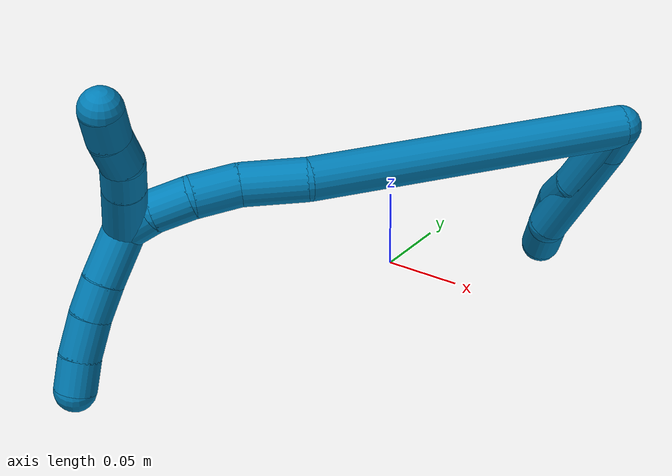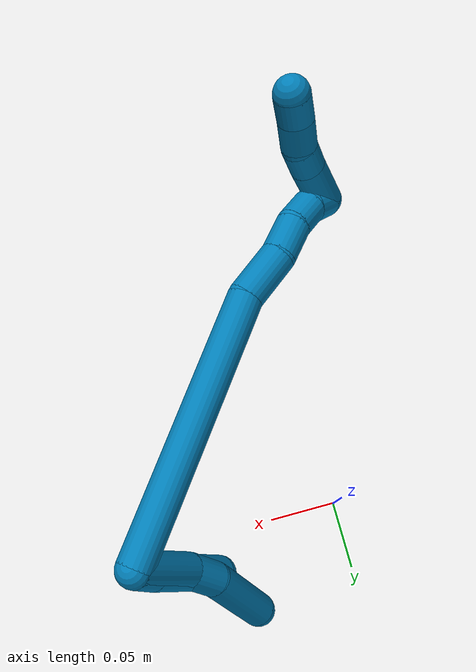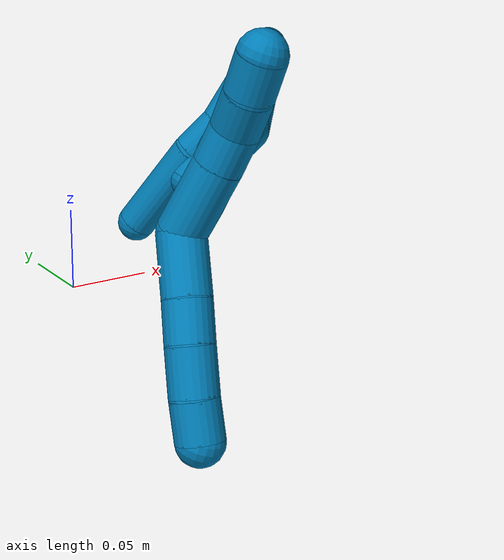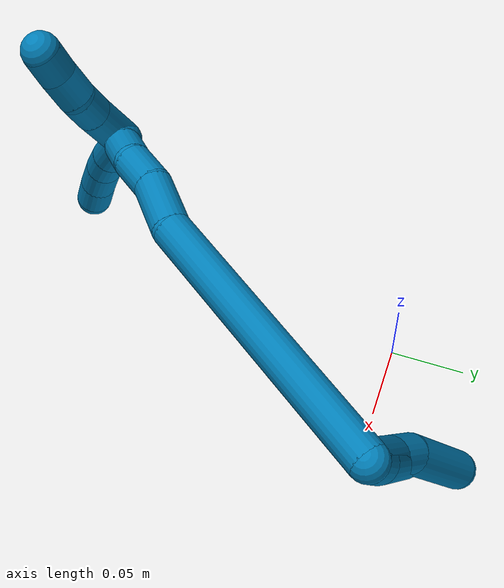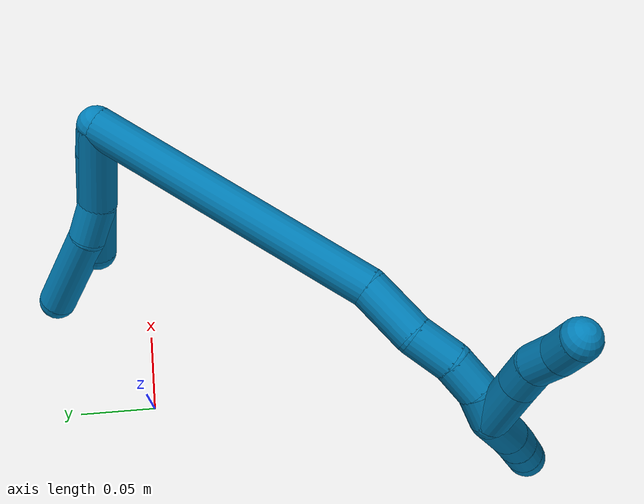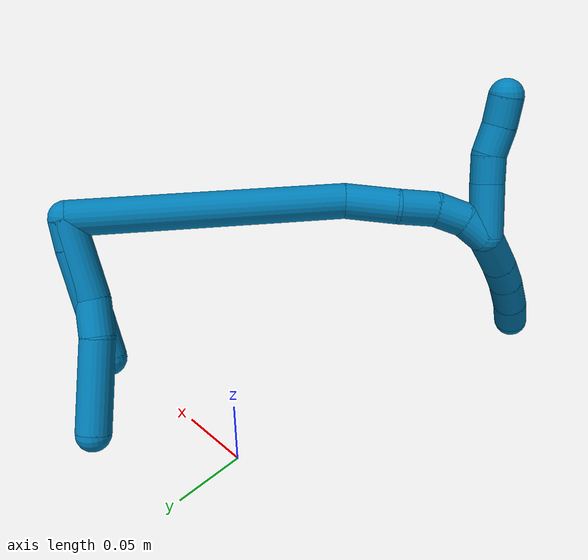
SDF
<sdf version="1.7">
 <world name="default">
  <model name="9">
   <static>0</static>
   <link name="9">
    <collision name="collision-cylinder-e_1_2_8">
     <pose>-0.008055 -0.004603 -0.027389 2.97507 -0.282279 -2.07946</pose>
     <geometry><cylinder><radius>0.0125</radius><length>0.057836</length></cylinder></geometry>
     <surface>
      <friction><ode><mu>1.16</mu><mu2>1.16</mu2><slip1>0</slip1><slip2>0</slip2></ode></friction>
      <contact><ode><kp>1e+06</kp><kd>1</kd><max_vel>0</max_vel><min_depth>0.001</min_depth></ode></contact>
     </surface>
    </collision>
    <visual name="visual-cylinder-e_1_2_8">
     <pose>-0.008055 -0.004603 -0.027389 2.97507 -0.282279 -2.07946</pose>
     <geometry><cylinder><radius>0.0125</radius><length>0.057836</length></cylinder></geometry>
     <material><ambient>0 0.490196 0.709804 1</ambient></material>
    </visual>
    <collision name="collision-cylinder-e_2_8_9">
     <pose>-0.021907 -0.008453 -0.066743 -3.07863 -0.450434 2.8684</pose>
     <geometry><cylinder><radius>0.0125</radius><length>0.026634</length></cylinder></geometry>
     <surface>
      <friction><ode><mu>1.16</mu><mu2>1.16</mu2><slip1>0</slip1><slip2>0</slip2></ode></friction>
      <contact><ode><kp>1e+06</kp><kd>1</kd><max_vel>0</max_vel><min_depth>0.001</min_depth></ode></contact>
     </surface>
    </collision>
    <visual name="visual-cylinder-e_2_8_9">
     <pose>-0.021907 -0.008453 -0.066743 -3.07863 -0.450434 2.8684</pose>
     <geometry><cylinder><radius>0.0125</radius><length>0.026634</length></cylinder></geometry>
     <material><ambient>0 0.490196 0.709804 1</ambient></material>
    </visual>
    <collision name="collision-cylinder-e_3_9_6">
     <pose>-0.036167 -0.001563 -0.109762 -2.94653 -0.261224 1.86122</pose>
     <geometry><cylinder><radius>0.0125</radius><length>0.065531</length></cylinder></geometry>
     <surface>
      <friction><ode><mu>1.16</mu><mu2>1.16</mu2><slip1>0</slip1><slip2>0</slip2></ode></friction>
      <contact><ode><kp>1e+06</kp><kd>1</kd><max_vel>0</max_vel><min_depth>0.001</min_depth></ode></contact>
     </surface>
    </collision>
    <visual name="visual-cylinder-e_3_9_6">
     <pose>-0.036167 -0.001563 -0.109762 -2.94653 -0.261224 1.86122</pose>
     <geometry><cylinder><radius>0.0125</radius><length>0.065531</length></cylinder></geometry>
     <material><ambient>0 0.490196 0.709804 1</ambient></material>
    </visual>
    <collision name="collision-cylinder-e_1_2_10">
     <pose>-0.002263 -0.000958 -0.009943 3.0455 -0.222782 -2.3296</pose>
     <geometry><cylinder><radius>0.0125</radius><length>0.020485</length></cylinder></geometry>
     <surface>
      <friction><ode><mu>1.16</mu><mu2>1.16</mu2><slip1>0</slip1><slip2>0</slip2></ode></friction>
      <contact><ode><kp>1e+06</kp><kd>1</kd><max_vel>0</max_vel><min_depth>0.001</min_depth></ode></contact>
     </surface>
    </collision>
    <visual name="visual-cylinder-e_1_2_10">
     <pose>-0.002263 -0.000958 -0.009943 3.0455 -0.222782 -2.3296</pose>
     <geometry><cylinder><radius>0.0125</radius><length>0.020485</length></cylinder></geometry>
     <material><ambient>0 0.490196 0.709804 1</ambient></material>
    </visual>
    <collision name="collision-cylinder-e_2_10_5">
     <pose>-0.01494 -0.008236 -0.057732 2.97616 -0.265038 -2.02879</pose>
     <geometry><cylinder><radius>0.0125</radius><length>0.079515</length></cylinder></geometry>
     <surface>
      <friction><ode><mu>1.16</mu><mu2>1.16</mu2><slip1>0</slip1><slip2>0</slip2></ode></friction>
      <contact><ode><kp>1e+06</kp><kd>1</kd><max_vel>0</max_vel><min_depth>0.001</min_depth></ode></contact>
     </surface>
    </collision>
    <visual name="visual-cylinder-e_2_10_5">
     <pose>-0.01494 -0.008236 -0.057732 2.97616 -0.265038 -2.02879</pose>
     <geometry><cylinder><radius>0.0125</radius><length>0.079515</length></cylinder></geometry>
     <material><ambient>0 0.490196 0.709804 1</ambient></material>
    </visual>
    <collision name="collision-cylinder-e_1_2_11">
     <pose>-0.028153 -0.091626 0.001459 1.55487 -0.298068 -0.293427</pose>
     <geometry><cylinder><radius>0.0125</radius><length>0.19173</length></cylinder></geometry>
     <surface>
      <friction><ode><mu>1.16</mu><mu2>1.16</mu2><slip1>0</slip1><slip2>0</slip2></ode></friction>
      <contact><ode><kp>1e+06</kp><kd>1</kd><max_vel>0</max_vel><min_depth>0.001</min_depth></ode></contact>
     </surface>
    </collision>
    <visual name="visual-cylinder-e_1_2_11">
     <pose>-0.028153 -0.091626 0.001459 1.55487 -0.298068 -0.293427</pose>
     <geometry><cylinder><radius>0.0125</radius><length>0.19173</length></cylinder></geometry>
     <material><ambient>0 0.490196 0.709804 1</ambient></material>
    </visual>
    <collision name="collision-cylinder-e_2_11_12">
     <pose>-0.066017 -0.19947 0.001045 1.68582 -0.53661 -0.59852</pose>
     <geometry><cylinder><radius>0.0125</radius><length>0.037991</length></cylinder></geometry>
     <surface>
      <friction><ode><mu>1.16</mu><mu2>1.16</mu2><slip1>0</slip1><slip2>0</slip2></ode></friction>
      <contact><ode><kp>1e+06</kp><kd>1</kd><max_vel>0</max_vel><min_depth>0.001</min_depth></ode></contact>
     </surface>
    </collision>
    <visual name="visual-cylinder-e_2_11_12">
     <pose>-0.066017 -0.19947 0.001045 1.68582 -0.53661 -0.59852</pose>
     <geometry><cylinder><radius>0.0125</radius><length>0.037991</length></cylinder></geometry>
     <material><ambient>0 0.490196 0.709804 1</ambient></material>
    </visual>
    <collision name="collision-cylinder-e_3_12_13">
     <pose>-0.079817 -0.228569 -0.00242 1.6937 -0.305221 -0.344501</pose>
     <geometry><cylinder><radius>0.0125</radius><length>0.027216</length></cylinder></geometry>
     <surface>
      <friction><ode><mu>1.16</mu><mu2>1.16</mu2><slip1>0</slip1><slip2>0</slip2></ode></friction>
      <contact><ode><kp>1e+06</kp><kd>1</kd><max_vel>0</max_vel><min_depth>0.001</min_depth></ode></contact>
     </surface>
    </collision>
    <visual name="visual-cylinder-e_3_12_13">
     <pose>-0.079817 -0.228569 -0.00242 1.6937 -0.305221 -0.344501</pose>
     <geometry><cylinder><radius>0.0125</radius><length>0.027216</length></cylinder></geometry>
     <material><ambient>0 0.490196 0.709804 1</ambient></material>
    </visual>
    <collision name="collision-cylinder-e_4_13_14">
     <pose>-0.088194 -0.251208 -0.008146 1.97158 -0.38443 -0.571576</pose>
     <geometry><cylinder><radius>0.0125</radius><length>0.022864</length></cylinder></geometry>
     <surface>
      <friction><ode><mu>1.16</mu><mu2>1.16</mu2><slip1>0</slip1><slip2>0</slip2></ode></friction>
      <contact><ode><kp>1e+06</kp><kd>1</kd><max_vel>0</max_vel><min_depth>0.001</min_depth></ode></contact>
     </surface>
    </collision>
    <visual name="visual-cylinder-e_4_13_14">
     <pose>-0.088194 -0.251208 -0.008146 1.97158 -0.38443 -0.571576</pose>
     <geometry><cylinder><radius>0.0125</radius><length>0.022864</length></cylinder></geometry>
     <material><ambient>0 0.490196 0.709804 1</ambient></material>
    </visual>
    <collision name="collision-cylinder-e_5_14_1">
     <pose>-0.096485 -0.267637 -0.01872 2.3386 -0.407578 -0.906</pose>
     <geometry><cylinder><radius>0.0125</radius><length>0.020199</length></cylinder></geometry>
     <surface>
      <friction><ode><mu>1.16</mu><mu2>1.16</mu2><slip1>0</slip1><slip2>0</slip2></ode></friction>
      <contact><ode><kp>1e+06</kp><kd>1</kd><max_vel>0</max_vel><min_depth>0.001</min_depth></ode></contact>
     </surface>
    </collision>
    <visual name="visual-cylinder-e_5_14_1">
     <pose>-0.096485 -0.267637 -0.01872 2.3386 -0.407578 -0.906</pose>
     <geometry><cylinder><radius>0.0125</radius><length>0.020199</length></cylinder></geometry>
     <material><ambient>0 0.490196 0.709804 1</ambient></material>
    </visual>
    <collision name="collision-cylinder-e_1_1_15">
     <pose>-0.097738 -0.275729 -0.006118 0.074519 0.143043 0.005341</pose>
     <geometry><cylinder><radius>0.0125</radius><length>0.038585</length></cylinder></geometry>
     <surface>
      <friction><ode><mu>1.16</mu><mu2>1.16</mu2><slip1>0</slip1><slip2>0</slip2></ode></friction>
      <contact><ode><kp>1e+06</kp><kd>1</kd><max_vel>0</max_vel><min_depth>0.001</min_depth></ode></contact>
     </surface>
    </collision>
    <visual name="visual-cylinder-e_1_1_15">
     <pose>-0.097738 -0.275729 -0.006118 0.074519 0.143043 0.005341</pose>
     <geometry><cylinder><radius>0.0125</radius><length>0.038585</length></cylinder></geometry>
     <material><ambient>0 0.490196 0.709804 1</ambient></material>
    </visual>
    <collision name="collision-cylinder-e_2_15_16">
     <pose>-0.094084 -0.277814 0.022862 0.066628 0.090474 0.003017</pose>
     <geometry><cylinder><radius>0.0125</radius><length>0.02</length></cylinder></geometry>
     <surface>
      <friction><ode><mu>1.16</mu><mu2>1.16</mu2><slip1>0</slip1><slip2>0</slip2></ode></friction>
      <contact><ode><kp>1e+06</kp><kd>1</kd><max_vel>0</max_vel><min_depth>0.001</min_depth></ode></contact>
     </surface>
    </collision>
    <visual name="visual-cylinder-e_2_15_16">
     <pose>-0.094084 -0.277814 0.022862 0.066628 0.090474 0.003017</pose>
     <geometry><cylinder><radius>0.0125</radius><length>0.02</length></cylinder></geometry>
     <material><ambient>0 0.490196 0.709804 1</ambient></material>
    </visual>
    <collision name="collision-cylinder-e_3_16_17">
     <pose>-0.093875 -0.281757 0.04274 0.318726 -0.066268 -0.010655</pose>
     <geometry><cylinder><radius>0.0125</radius><length>0.020982</length></cylinder></geometry>
     <surface>
      <friction><ode><mu>1.16</mu><mu2>1.16</mu2><slip1>0</slip1><slip2>0</slip2></ode></friction>
      <contact><ode><kp>1e+06</kp><kd>1</kd><max_vel>0</max_vel><min_depth>0.001</min_depth></ode></contact>
     </surface>
    </collision>
    <visual name="visual-cylinder-e_3_16_17">
     <pose>-0.093875 -0.281757 0.04274 0.318726 -0.066268 -0.010655</pose>
     <geometry><cylinder><radius>0.0125</radius><length>0.020982</length></cylinder></geometry>
     <material><ambient>0 0.490196 0.709804 1</ambient></material>
    </visual>
    <collision name="collision-cylinder-e_4_17_4">
     <pose>-0.095211 -0.286704 0.06274 0.164147 -0.062856 -0.005172</pose>
     <geometry><cylinder><radius>0.0125</radius><length>0.020432</length></cylinder></geometry>
     <surface>
      <friction><ode><mu>1.16</mu><mu2>1.16</mu2><slip1>0</slip1><slip2>0</slip2></ode></friction>
      <contact><ode><kp>1e+06</kp><kd>1</kd><max_vel>0</max_vel><min_depth>0.001</min_depth></ode></contact>
     </surface>
    </collision>
    <visual name="visual-cylinder-e_4_17_4">
     <pose>-0.095211 -0.286704 0.06274 0.164147 -0.062856 -0.005172</pose>
     <geometry><cylinder><radius>0.0125</radius><length>0.020432</length></cylinder></geometry>
     <material><ambient>0 0.490196 0.709804 1</ambient></material>
    </visual>
    <collision name="collision-cylinder-e_1_1_18">
     <pose>-0.096731 -0.283942 -0.037674 2.48547 0.233556 0.663839</pose>
     <geometry><cylinder><radius>0.0125</radius><length>0.032468</length></cylinder></geometry>
     <surface>
      <friction><ode><mu>1.16</mu><mu2>1.16</mu2><slip1>0</slip1><slip2>0</slip2></ode></friction>
      <contact><ode><kp>1e+06</kp><kd>1</kd><max_vel>0</max_vel><min_depth>0.001</min_depth></ode></contact>
     </surface>
    </collision>
    <visual name="visual-cylinder-e_1_1_18">
     <pose>-0.096731 -0.283942 -0.037674 2.48547 0.233556 0.663839</pose>
     <geometry><cylinder><radius>0.0125</radius><length>0.032468</length></cylinder></geometry>
     <material><ambient>0 0.490196 0.709804 1</ambient></material>
    </visual>
    <collision name="collision-cylinder-e_2_18_19">
     <pose>-0.090474 -0.29938 -0.05899 2.5587 0.232781 0.743263</pose>
     <geometry><cylinder><radius>0.0125</radius><length>0.021671</length></cylinder></geometry>
     <surface>
      <friction><ode><mu>1.16</mu><mu2>1.16</mu2><slip1>0</slip1><slip2>0</slip2></ode></friction>
      <contact><ode><kp>1e+06</kp><kd>1</kd><max_vel>0</max_vel><min_depth>0.001</min_depth></ode></contact>
     </surface>
    </collision>
    <visual name="visual-cylinder-e_2_18_19">
     <pose>-0.090474 -0.29938 -0.05899 2.5587 0.232781 0.743263</pose>
     <geometry><cylinder><radius>0.0125</radius><length>0.021671</length></cylinder></geometry>
     <material><ambient>0 0.490196 0.709804 1</ambient></material>
    </visual>
    <collision name="collision-cylinder-e_3_19_20">
     <pose>-0.084562 -0.310914 -0.078291 2.64195 0.277972 1.003</pose>
     <geometry><cylinder><radius>0.0125</radius><length>0.024875</length></cylinder></geometry>
     <surface>
      <friction><ode><mu>1.16</mu><mu2>1.16</mu2><slip1>0</slip1><slip2>0</slip2></ode></friction>
      <contact><ode><kp>1e+06</kp><kd>1</kd><max_vel>0</max_vel><min_depth>0.001</min_depth></ode></contact>
     </surface>
    </collision>
    <visual name="visual-cylinder-e_3_19_20">
     <pose>-0.084562 -0.310914 -0.078291 2.64195 0.277972 1.003</pose>
     <geometry><cylinder><radius>0.0125</radius><length>0.024875</length></cylinder></geometry>
     <material><ambient>0 0.490196 0.709804 1</ambient></material>
    </visual>
    <collision name="collision-cylinder-e_4_20_3">
     <pose>-0.077493 -0.320687 -0.097755 2.71798 0.355844 1.39294</pose>
     <geometry><cylinder><radius>0.0125</radius><length>0.020987</length></cylinder></geometry>
     <surface>
      <friction><ode><mu>1.16</mu><mu2>1.16</mu2><slip1>0</slip1><slip2>0</slip2></ode></friction>
      <contact><ode><kp>1e+06</kp><kd>1</kd><max_vel>0</max_vel><min_depth>0.001</min_depth></ode></contact>
     </surface>
    </collision>
    <visual name="visual-cylinder-e_4_20_3">
     <pose>-0.077493 -0.320687 -0.097755 2.71798 0.355844 1.39294</pose>
     <geometry><cylinder><radius>0.0125</radius><length>0.020987</length></cylinder></geometry>
     <material><ambient>0 0.490196 0.709804 1</ambient></material>
    </visual>
    <collision name="collision-sphere-3">
     <pose>-0.073837 -0.32473 -0.106722 0 -0 0</pose>
     <geometry><sphere><radius>0.0125</radius></sphere></geometry>
     <surface>
      <friction><ode><mu>1.16</mu><mu2>1.16</mu2><slip1>0</slip1><slip2>0</slip2></ode></friction>
      <contact><ode><kp>1e+06</kp><kd>1</kd><max_vel>0</max_vel><min_depth>0.001</min_depth></ode></contact>
     </surface>
    </collision>
    <visual name="visual-sphere-3">
     <pose>-0.073837 -0.32473 -0.106722 0 -0 0</pose>
     <geometry><sphere><radius>0.0125</radius></sphere></geometry>
     <material><ambient>0 0.490196 0.709804 1</ambient></material>
    </visual>
    <collision name="collision-sphere-20">
     <pose>-0.081149 -0.316644 -0.088789 0 -0 0</pose>
     <geometry><sphere><radius>0.0125</radius></sphere></geometry>
     <surface>
      <friction><ode><mu>1.16</mu><mu2>1.16</mu2><slip1>0</slip1><slip2>0</slip2></ode></friction>
      <contact><ode><kp>1e+06</kp><kd>1</kd><max_vel>0</max_vel><min_depth>0.001</min_depth></ode></contact>
     </surface>
    </collision>
    <visual name="visual-sphere-20">
     <pose>-0.081149 -0.316644 -0.088789 0 -0 0</pose>
     <geometry><sphere><radius>0.0125</radius></sphere></geometry>
     <material><ambient>0 0.490196 0.709804 1</ambient></material>
    </visual>
    <collision name="collision-sphere-19">
     <pose>-0.087974 -0.305183 -0.067793 0 -0 0</pose>
     <geometry><sphere><radius>0.0125</radius></sphere></geometry>
     <surface>
      <friction><ode><mu>1.16</mu><mu2>1.16</mu2><slip1>0</slip1><slip2>0</slip2></ode></friction>
      <contact><ode><kp>1e+06</kp><kd>1</kd><max_vel>0</max_vel><min_depth>0.001</min_depth></ode></contact>
     </surface>
    </collision>
    <visual name="visual-sphere-19">
     <pose>-0.087974 -0.305183 -0.067793 0 -0 0</pose>
     <geometry><sphere><radius>0.0125</radius></sphere></geometry>
     <material><ambient>0 0.490196 0.709804 1</ambient></material>
    </visual>
    <collision name="collision-sphere-5">
     <pose>-0.025355 -0.014554 -0.095577 0 -0 0</pose>
     <geometry><sphere><radius>0.0125</radius></sphere></geometry>
     <surface>
      <friction><ode><mu>1.16</mu><mu2>1.16</mu2><slip1>0</slip1><slip2>0</slip2></ode></friction>
      <contact><ode><kp>1e+06</kp><kd>1</kd><max_vel>0</max_vel><min_depth>0.001</min_depth></ode></contact>
     </surface>
    </collision>
    <visual name="visual-sphere-5">
     <pose>-0.025355 -0.014554 -0.095577 0 -0 0</pose>
     <geometry><sphere><radius>0.0125</radius></sphere></geometry>
     <material><ambient>0 0.490196 0.709804 1</ambient></material>
    </visual>
    <collision name="collision-sphere-10">
     <pose>-0.004526 -0.001917 -0.019887 0 -0 0</pose>
     <geometry><sphere><radius>0.0125</radius></sphere></geometry>
     <surface>
      <friction><ode><mu>1.16</mu><mu2>1.16</mu2><slip1>0</slip1><slip2>0</slip2></ode></friction>
      <contact><ode><kp>1e+06</kp><kd>1</kd><max_vel>0</max_vel><min_depth>0.001</min_depth></ode></contact>
     </surface>
    </collision>
    <visual name="visual-sphere-10">
     <pose>-0.004526 -0.001917 -0.019887 0 -0 0</pose>
     <geometry><sphere><radius>0.0125</radius></sphere></geometry>
     <material><ambient>0 0.490196 0.709804 1</ambient></material>
    </visual>
    <collision name="collision-sphere-6">
     <pose>-0.044629 0.004572 -0.140815 0 -0 0</pose>
     <geometry><sphere><radius>0.0125</radius></sphere></geometry>
     <surface>
      <friction><ode><mu>1.16</mu><mu2>1.16</mu2><slip1>0</slip1><slip2>0</slip2></ode></friction>
      <contact><ode><kp>1e+06</kp><kd>1</kd><max_vel>0</max_vel><min_depth>0.001</min_depth></ode></contact>
     </surface>
    </collision>
    <visual name="visual-sphere-6">
     <pose>-0.044629 0.004572 -0.140815 0 -0 0</pose>
     <geometry><sphere><radius>0.0125</radius></sphere></geometry>
     <material><ambient>0 0.490196 0.709804 1</ambient></material>
    </visual>
    <collision name="collision-sphere-9">
     <pose>-0.027705 -0.007698 -0.078708 0 -0 0</pose>
     <geometry><sphere><radius>0.0125</radius></sphere></geometry>
     <surface>
      <friction><ode><mu>1.16</mu><mu2>1.16</mu2><slip1>0</slip1><slip2>0</slip2></ode></friction>
      <contact><ode><kp>1e+06</kp><kd>1</kd><max_vel>0</max_vel><min_depth>0.001</min_depth></ode></contact>
     </surface>
    </collision>
    <visual name="visual-sphere-9">
     <pose>-0.027705 -0.007698 -0.078708 0 -0 0</pose>
     <geometry><sphere><radius>0.0125</radius></sphere></geometry>
     <material><ambient>0 0.490196 0.709804 1</ambient></material>
    </visual>
    <collision name="collision-sphere-2">
     <geometry><sphere><radius>0.0125</radius></sphere></geometry>
     <surface>
      <friction><ode><mu>1.16</mu><mu2>1.16</mu2><slip1>0</slip1><slip2>0</slip2></ode></friction>
      <contact><ode><kp>1e+06</kp><kd>1</kd><max_vel>0</max_vel><min_depth>0.001</min_depth></ode></contact>
     </surface>
    </collision>
    <visual name="visual-sphere-2">
     <geometry><sphere><radius>0.0125</radius></sphere></geometry>
     <material><ambient>0 0.490196 0.709804 1</ambient></material>
    </visual>
    <collision name="collision-sphere-8">
     <pose>-0.01611 -0.009207 -0.054778 0 -0 0</pose>
     <geometry><sphere><radius>0.0125</radius></sphere></geometry>
     <surface>
      <friction><ode><mu>1.16</mu><mu2>1.16</mu2><slip1>0</slip1><slip2>0</slip2></ode></friction>
      <contact><ode><kp>1e+06</kp><kd>1</kd><max_vel>0</max_vel><min_depth>0.001</min_depth></ode></contact>
     </surface>
    </collision>
    <visual name="visual-sphere-8">
     <pose>-0.01611 -0.009207 -0.054778 0 -0 0</pose>
     <geometry><sphere><radius>0.0125</radius></sphere></geometry>
     <material><ambient>0 0.490196 0.709804 1</ambient></material>
    </visual>
    <collision name="collision-sphere-11">
     <pose>-0.056306 -0.183253 0.002918 0 -0 0</pose>
     <geometry><sphere><radius>0.0125</radius></sphere></geometry>
     <surface>
      <friction><ode><mu>1.16</mu><mu2>1.16</mu2><slip1>0</slip1><slip2>0</slip2></ode></friction>
      <contact><ode><kp>1e+06</kp><kd>1</kd><max_vel>0</max_vel><min_depth>0.001</min_depth></ode></contact>
     </surface>
    </collision>
    <visual name="visual-sphere-11">
     <pose>-0.056306 -0.183253 0.002918 0 -0 0</pose>
     <geometry><sphere><radius>0.0125</radius></sphere></geometry>
     <material><ambient>0 0.490196 0.709804 1</ambient></material>
    </visual>
    <collision name="collision-sphere-12">
     <pose>-0.075728 -0.215688 -0.000829 0 -0 0</pose>
     <geometry><sphere><radius>0.0125</radius></sphere></geometry>
     <surface>
      <friction><ode><mu>1.16</mu><mu2>1.16</mu2><slip1>0</slip1><slip2>0</slip2></ode></friction>
      <contact><ode><kp>1e+06</kp><kd>1</kd><max_vel>0</max_vel><min_depth>0.001</min_depth></ode></contact>
     </surface>
    </collision>
    <visual name="visual-sphere-12">
     <pose>-0.075728 -0.215688 -0.000829 0 -0 0</pose>
     <geometry><sphere><radius>0.0125</radius></sphere></geometry>
     <material><ambient>0 0.490196 0.709804 1</ambient></material>
    </visual>
    <collision name="collision-sphere-13">
     <pose>-0.083907 -0.24145 -0.004011 0 -0 0</pose>
     <geometry><sphere><radius>0.0125</radius></sphere></geometry>
     <surface>
      <friction><ode><mu>1.16</mu><mu2>1.16</mu2><slip1>0</slip1><slip2>0</slip2></ode></friction>
      <contact><ode><kp>1e+06</kp><kd>1</kd><max_vel>0</max_vel><min_depth>0.001</min_depth></ode></contact>
     </surface>
    </collision>
    <visual name="visual-sphere-13">
     <pose>-0.083907 -0.24145 -0.004011 0 -0 0</pose>
     <geometry><sphere><radius>0.0125</radius></sphere></geometry>
     <material><ambient>0 0.490196 0.709804 1</ambient></material>
    </visual>
    <collision name="collision-sphere-14">
     <pose>-0.092481 -0.260966 -0.01228 0 -0 0</pose>
     <geometry><sphere><radius>0.0125</radius></sphere></geometry>
     <surface>
      <friction><ode><mu>1.16</mu><mu2>1.16</mu2><slip1>0</slip1><slip2>0</slip2></ode></friction>
      <contact><ode><kp>1e+06</kp><kd>1</kd><max_vel>0</max_vel><min_depth>0.001</min_depth></ode></contact>
     </surface>
    </collision>
    <visual name="visual-sphere-14">
     <pose>-0.092481 -0.260966 -0.01228 0 -0 0</pose>
     <geometry><sphere><radius>0.0125</radius></sphere></geometry>
     <material><ambient>0 0.490196 0.709804 1</ambient></material>
    </visual>
    <collision name="collision-sphere-1">
     <pose>-0.100488 -0.274307 -0.02516 0 -0 0</pose>
     <geometry><sphere><radius>0.0125</radius></sphere></geometry>
     <surface>
      <friction><ode><mu>1.16</mu><mu2>1.16</mu2><slip1>0</slip1><slip2>0</slip2></ode></friction>
      <contact><ode><kp>1e+06</kp><kd>1</kd><max_vel>0</max_vel><min_depth>0.001</min_depth></ode></contact>
     </surface>
    </collision>
    <visual name="visual-sphere-1">
     <pose>-0.100488 -0.274307 -0.02516 0 -0 0</pose>
     <geometry><sphere><radius>0.0125</radius></sphere></geometry>
     <material><ambient>0 0.490196 0.709804 1</ambient></material>
    </visual>
    <collision name="collision-sphere-18">
     <pose>-0.092974 -0.293576 -0.050188 0 -0 0</pose>
     <geometry><sphere><radius>0.0125</radius></sphere></geometry>
     <surface>
      <friction><ode><mu>1.16</mu><mu2>1.16</mu2><slip1>0</slip1><slip2>0</slip2></ode></friction>
      <contact><ode><kp>1e+06</kp><kd>1</kd><max_vel>0</max_vel><min_depth>0.001</min_depth></ode></contact>
     </surface>
    </collision>
    <visual name="visual-sphere-18">
     <pose>-0.092974 -0.293576 -0.050188 0 -0 0</pose>
     <geometry><sphere><radius>0.0125</radius></sphere></geometry>
     <material><ambient>0 0.490196 0.709804 1</ambient></material>
    </visual>
    <collision name="collision-sphere-15">
     <pose>-0.094987 -0.277151 0.012925 0 -0 0</pose>
     <geometry><sphere><radius>0.0125</radius></sphere></geometry>
     <surface>
      <friction><ode><mu>1.16</mu><mu2>1.16</mu2><slip1>0</slip1><slip2>0</slip2></ode></friction>
      <contact><ode><kp>1e+06</kp><kd>1</kd><max_vel>0</max_vel><min_depth>0.001</min_depth></ode></contact>
     </surface>
    </collision>
    <visual name="visual-sphere-15">
     <pose>-0.094987 -0.277151 0.012925 0 -0 0</pose>
     <geometry><sphere><radius>0.0125</radius></sphere></geometry>
     <material><ambient>0 0.490196 0.709804 1</ambient></material>
    </visual>
    <collision name="collision-sphere-16">
     <pose>-0.09318 -0.278477 0.032799 0 -0 0</pose>
     <geometry><sphere><radius>0.0125</radius></sphere></geometry>
     <surface>
      <friction><ode><mu>1.16</mu><mu2>1.16</mu2><slip1>0</slip1><slip2>0</slip2></ode></friction>
      <contact><ode><kp>1e+06</kp><kd>1</kd><max_vel>0</max_vel><min_depth>0.001</min_depth></ode></contact>
     </surface>
    </collision>
    <visual name="visual-sphere-16">
     <pose>-0.09318 -0.278477 0.032799 0 -0 0</pose>
     <geometry><sphere><radius>0.0125</radius></sphere></geometry>
     <material><ambient>0 0.490196 0.709804 1</ambient></material>
    </visual>
    <collision name="collision-sphere-17">
     <pose>-0.09457 -0.285037 0.052681 0 -0 0</pose>
     <geometry><sphere><radius>0.0125</radius></sphere></geometry>
     <surface>
      <friction><ode><mu>1.16</mu><mu2>1.16</mu2><slip1>0</slip1><slip2>0</slip2></ode></friction>
      <contact><ode><kp>1e+06</kp><kd>1</kd><max_vel>0</max_vel><min_depth>0.001</min_depth></ode></contact>
     </surface>
    </collision>
    <visual name="visual-sphere-17">
     <pose>-0.09457 -0.285037 0.052681 0 -0 0</pose>
     <geometry><sphere><radius>0.0125</radius></sphere></geometry>
     <material><ambient>0 0.490196 0.709804 1</ambient></material>
    </visual>
    <collision name="collision-sphere-4">
     <pose>-0.095853 -0.28837 0.072799 0 -0 0</pose>
     <geometry><sphere><radius>0.0125</radius></sphere></geometry>
     <surface>
      <friction><ode><mu>1.16</mu><mu2>1.16</mu2><slip1>0</slip1><slip2>0</slip2></ode></friction>
      <contact><ode><kp>1e+06</kp><kd>1</kd><max_vel>0</max_vel><min_depth>0.001</min_depth></ode></contact>
     </surface>
    </collision>
    <visual name="visual-sphere-4">
     <pose>-0.095853 -0.28837 0.072799 0 -0 0</pose>
     <geometry><sphere><radius>0.0125</radius></sphere></geometry>
     <material><ambient>0 0.490196 0.709804 1</ambient></material>
    </visual>
    <inertial>
     <pose>-0.049462 -0.135894 -0.026347 0 -0 0</pose>
     <mass>0.75</mass>
     <inertia>
      <ixx>0.000327</ixx>
      <ixy>0</ixy>
      <ixz>0</ixz>
      <iyy>-0.000111</iyy>
      <iyz>0</iyz>
      <izz>0.000773</izz>
     </inertia>
    </inertial>
   </link>
   <pose>0.150162 0.014195 0.131491 0.129724 0.294834 -0.316768</pose>
  </model>
 </world>
</sdf>
